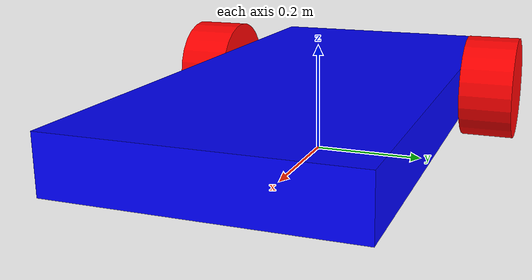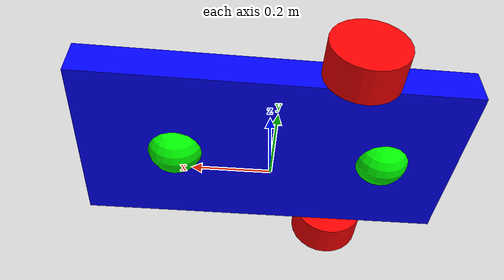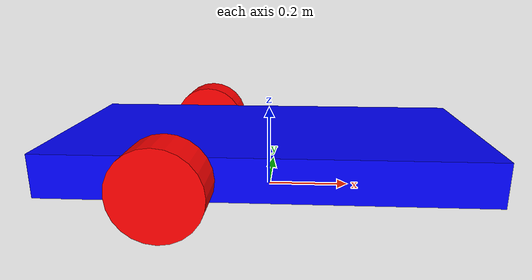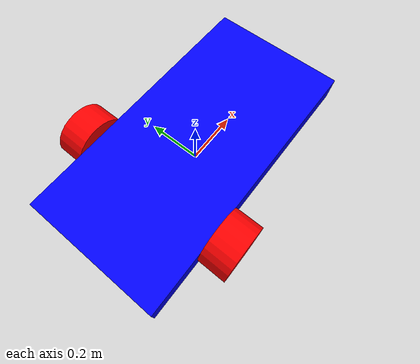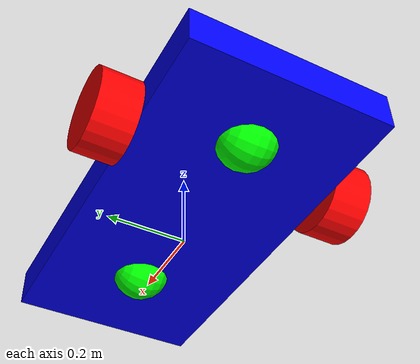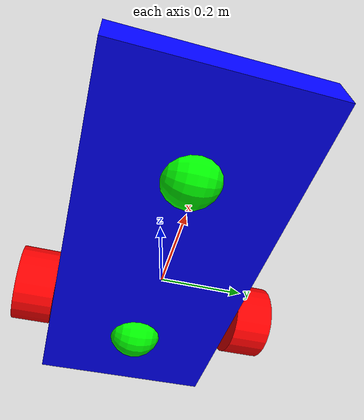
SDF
<?xml version="1.0" ?>
<sdf version="1.6">
    <model name='rover_differential'>
        <!--Links-->
        <link name='base_link'>
            <pose relative_to='__model__'>0 0 0.1 0 0 0</pose>
            <inertial>
                <mass>5.0</mass>
                <pose>-0.2 0 0 0 0 0</pose> <!-- Center of mass offset to wheel axis-->
				<inertia>
					<ixx>0.030208333</ixx>
					<ixy>0.0</ixy>
					<ixz>0.0</ixz>
					<iyy>0.108333333</iyy>
					<iyz>0.0</iyz>
					<izz>0.130208333</izz>
				</inertia>
            </inertial>
            <visual name='visual'>
                <geometry>
                    <box>
                        <size>1 0.5 0.1</size>
                    </box>
                </geometry>
                <material>
                    <ambient>0.0 0.0 1.0 1</ambient>
                    <diffuse>0.0 0.0 1.0 1</diffuse>
                    <specular>0.0 0.0 1.0 1</specular>
                </material>
            </visual>
            <collision name='collision'>
                <geometry>
                    <box>
                        <size>1 0.5 0.1</size>
                    </box>
                </geometry>
            </collision>

            <!--Sensors-->
            <sensor name="imu_sensor" type="imu">
				<always_on>1</always_on>
				<update_rate>250</update_rate>
				<imu>
					<angular_velocity>
						<x>
						<noise type="gaussian">
							<mean>0</mean>
							<stddev>0.0003394</stddev>
							<dynamic_bias_stddev>3.8785e-05</dynamic_bias_stddev>
							<dynamic_bias_correlation_time>1000</dynamic_bias_correlation_time>
						</noise>
						</x>
						<y>
						<noise type="gaussian">
							<mean>0</mean>
							<stddev>0.0003394</stddev>
							<dynamic_bias_stddev>3.8785e-05</dynamic_bias_stddev>
							<dynamic_bias_correlation_time>1000</dynamic_bias_correlation_time>
						</noise>
						</y>
						<z>
						<noise type="gaussian">
							<mean>0</mean>
							<stddev>0.0003394</stddev>
							<dynamic_bias_stddev>3.8785e-05</dynamic_bias_stddev>
							<dynamic_bias_correlation_time>1000</dynamic_bias_correlation_time>
						</noise>
						</z>
					</angular_velocity>
					<linear_acceleration>
						<x>
						<noise type="gaussian">
							<mean>0</mean>
							<stddev>0.004</stddev>
							<dynamic_bias_stddev>0.006</dynamic_bias_stddev>
							<dynamic_bias_correlation_time>300</dynamic_bias_correlation_time>
						</noise>
						</x>
						<y>
						<noise type="gaussian">
							<mean>0</mean>
							<stddev>0.004</stddev>
							<dynamic_bias_stddev>0.006</dynamic_bias_stddev>
							<dynamic_bias_correlation_time>300</dynamic_bias_correlation_time>
						</noise>
						</y>
						<z>
						<noise type="gaussian">
							<mean>0</mean>
							<stddev>0.004</stddev>
							<dynamic_bias_stddev>0.006</dynamic_bias_stddev>
							<dynamic_bias_correlation_time>300</dynamic_bias_correlation_time>
						</noise>
						</z>
					</linear_acceleration>
				</imu>
			</sensor>
            <sensor name="magnetometer_sensor" type="magnetometer">
				<always_on>1</always_on>
				<update_rate>100</update_rate>
				<magnetometer>
					<x>
						<noise type="gaussian">
						<stddev>0.0001</stddev>
						</noise>
					</x>
					<y>
						<noise type="gaussian">
						<stddev>0.0001</stddev>
						</noise>
					</y>
					<z>
						<noise type="gaussian">
						<stddev>0.0001</stddev>
						</noise>
					</z>
				</magnetometer>
			</sensor>
			<sensor name="navsat_sensor" type="navsat">
				<always_on>1</always_on>
				<update_rate>30</update_rate>
			</sensor>
            <sensor name="air_pressure_sensor" type="air_pressure">
				<always_on>1</always_on>
				<update_rate>50</update_rate>
				<air_pressure>
					<pressure>
						<noise type="gaussian">
							<mean>0</mean>
							<stddev>0.01</stddev>
						</noise>
					</pressure>
				</air_pressure>
			</sensor>
        </link>

        <link name='wheel_rear_left_link'>
            <pose relative_to="base_link">-0.2 0.3 0 -1.5707 0 0</pose>
            <inertial>
                <mass>0.5</mass>
				<inertia>
					<ixx>0.000807292</ixx>
					<ixy>0</ixy>
					<ixz>0</ixz>
					<iyy>0.000807292</iyy>
					<iyz>0</iyz>
					<izz>0.00140625</izz>
				</inertia>
            </inertial>
            <visual name='visual'>
                <geometry>
                    <cylinder>
                        <radius>0.1</radius>
                        <length>0.1</length>
                    </cylinder>
                </geometry>
                <material>
                    <ambient>1.0 0.0 0.0 1</ambient>
                    <diffuse>1.0 0.0 0.0 1</diffuse>
                    <specular>1.0 0.0 0.0 1</specular>
                </material>
            </visual>
            <collision name='collision'>
                <geometry>
                    <cylinder>
                        <radius>0.1</radius>
                        <length>0.1</length>
                    </cylinder>
                </geometry>
                <surface>
					<friction>
                        <ode>
                            <mu>1.0</mu>
                            <mu2>1.0</mu2>
                            <fdir1>1 0 0</fdir1>
                            <slip1>0.0</slip1>
                            <slip2>0.0</slip2>
                        </ode>
					</friction>
				</surface>
            </collision>
        </link>

        <link name='wheel_rear_right_link'>
            <pose relative_to="base_link">-0.2 -0.3 0 -1.5707 0 0</pose>
            <inertial>
                <mass>0.5</mass>
				<inertia>
					<ixx>0.000807292</ixx>
					<ixy>0</ixy>
					<ixz>0</ixz>
					<iyy>0.000807292</iyy>
					<iyz>0</iyz>
					<izz>0.00140625</izz>
				</inertia>
            </inertial>
            <visual name='visual'>
                <geometry>
                    <cylinder>
                        <radius>0.1</radius>
                        <length>0.1</length>
                    </cylinder>
                </geometry>
                <material>
                    <ambient>1.0 0.0 0.0 1</ambient>
                    <diffuse>1.0 0.0 0.0 1</diffuse>
                    <specular>1.0 0.0 0.0 1</specular>
                </material>
            </visual>
            <collision name='collision'>
                <geometry>
                    <cylinder>
                        <radius>0.1</radius>
                        <length>0.1</length>
                    </cylinder>
                </geometry>
                <surface>
					<friction>
                        <ode>
                            <mu>1.0</mu>
                            <mu2>1.0</mu2>
                            <fdir1>1 0 0</fdir1>
                            <slip1>0.0</slip1>
                            <slip2>0.0</slip2>
                        </ode>
					</friction>
				</surface>
            </collision>
        </link>

        <link name='cast_wheel_front_link'>
            <pose relative_to="base_link">0.25 0 -0.025 -1.5707 0 0</pose>
            <inertial>
                <mass>1</mass>
                <inertia>
                    <ixx>0.016</ixx>
                    <ixy>0</ixy>
                    <ixz>0</ixz>
                    <iyy>0.016</iyy>
                    <iyz>0</iyz>
                    <izz>0.016</izz>
                </inertia>
            </inertial>
            <visual name='visual'>
                <geometry>
                    <sphere>
                        <radius>0.075</radius>
                    </sphere>
                </geometry>
                <material>
                    <ambient>0.0 1 0.0 1</ambient>
                    <diffuse>0.0 1 0.0 1</diffuse>
                    <specular>0.0 1 0.0 1</specular>
                </material>
            </visual>
            <collision name='collision'>
                <geometry>
                    <sphere>
                        <radius>0.075</radius>
                    </sphere>
                </geometry>
                <surface>
					<friction>
                        <ode>
                            <mu>0</mu>
                            <mu2>0</mu2>
                            <fdir1>1 0 0</fdir1>
                        </ode>
					</friction>
				</surface>
            </collision>
        </link>

        <link name='cast_wheel_rear_link'>
            <pose relative_to="base_link">-0.3 0 -0.025 -1.5707 0 0</pose>
            <inertial>
                <mass>1</mass>
                <inertia>
                    <ixx>0.016</ixx>
                    <ixy>0</ixy>
                    <ixz>0</ixz>
                    <iyy>0.016</iyy>
                    <iyz>0</iyz>
                    <izz>0.016</izz>
                </inertia>
            </inertial>
            <visual name='visual'>
                <geometry>
                    <sphere>
                        <radius>0.075</radius>
                    </sphere>
                </geometry>
                <material>
                    <ambient>0.0 1 0.0 1</ambient>
                    <diffuse>0.0 1 0.0 1</diffuse>
                    <specular>0.0 1 0.0 1</specular>
                </material>
            </visual>
            <collision name='collision'>
                <geometry>
                    <sphere>
                        <radius>0.075</radius>
                    </sphere>
                </geometry>
                <surface>
					<friction>
                        <ode>
                            <mu>0</mu>
                            <mu2>0</mu2>
                            <fdir1>1 0 0</fdir1>
                        </ode>
					</friction>
				</surface>
            </collision>
        </link>

        <!-- Joints -->
        <joint name='wheel_rear_left_joint' type='revolute'>
            <pose relative_to='wheel_rear_left_link'/>
            <parent>base_link</parent>
            <child>wheel_rear_left_link</child>
            <axis>
                <xyz expressed_in='__model__'>0 1 0</xyz>
                <limit>
                    <lower>-1.79769e+308</lower>
                    <upper>1.79769e+308</upper>
                </limit>
            </axis>
        </joint>

        <joint name='wheel rear_right_joint' type='revolute'>
            <pose relative_to='wheel_rear_right_link'/>
            <parent>base_link</parent>
            <child>wheel_rear_right_link</child>
            <axis>
                <xyz expressed_in='__model__'>0 1 0</xyz>
                <limit>
                    <lower>-1.79769e+308</lower>
                    <upper>1.79769e+308</upper>
                </limit>
            </axis>
        </joint>

        <joint name='cast_wheel_front_joint' type='ball'>
            <pose relative_to='cast_wheel_front_link'/>
            <parent>base_link</parent>
            <child>cast_wheel_front_link</child>
        </joint>

        <joint name='cast_wheel_rear_link' type='ball'>
            <pose relative_to='cast_wheel_rear_link'/>
            <parent>base_link</parent>
            <child>cast_wheel_rear_link</child>
        </joint>

        <!--Plugins-->
        <plugin filename="gz-sim-joint-controller-system" name="gz::sim::systems::JointController">
            <joint_name>wheel_rear_left_joint</joint_name>
            <sub_topic>command/motor_speed</sub_topic>
            <control_type>velocity</control_type>
            <use_actuator_msg>true</use_actuator_msg>
            <actuator_number>1</actuator_number>
	    </plugin>

	    <plugin filename="gz-sim-joint-controller-system" name="gz::sim::systems::JointController">
	        <joint_name>wheel rear_right_joint</joint_name>
	        <sub_topic>command/motor_speed</sub_topic>
            <control_type>velocity</control_type>
		    <use_actuator_msg>true</use_actuator_msg>
	        <actuator_number>0</actuator_number>
	    </plugin>

        <plugin filename="gz-sim-joint-state-publisher-system" name="gz::sim::systems::JointStatePublisher">
			<joint_name>wheel_rear_left_joint</joint_name>
			<joint_name>wheel rear_right_joint</joint_name>
		</plugin>
    </model>
</sdf>
